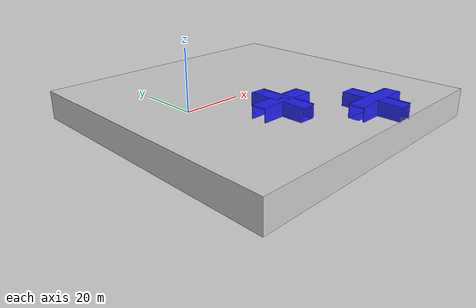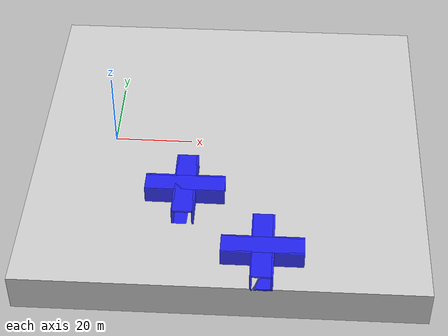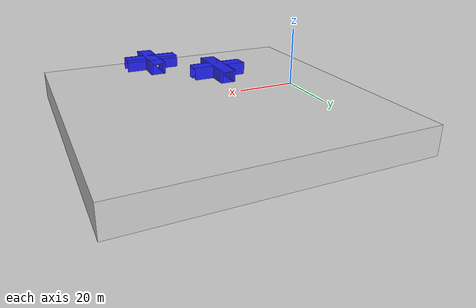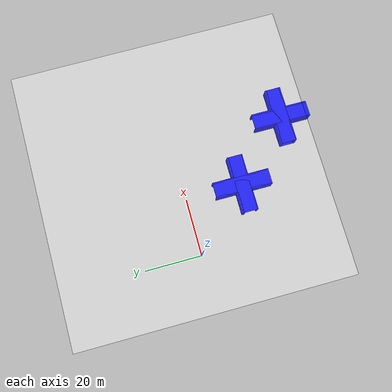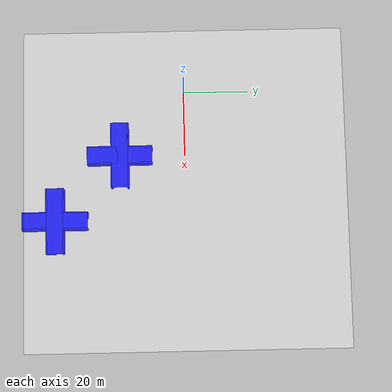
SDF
<sdf version="1.6">
 <world name="default">
  <model name="ground_plane">
   <static>true</static>
   <pose>30 0 0 0 0 0</pose>
   <link name="link">
    <collision name="collision">
     <pose>0 0 -5 0 0 0</pose>
     <geometry><box><size>100 100 10</size></box></geometry>
    </collision>
    <visual name="visual">
     <pose>0 0 -5 0 0 0</pose>
     <geometry><box><size>100 100 10</size></box></geometry>
     <material>
      <ambient>0.8 0.8 0.8 1</ambient>
      <diffuse>0.8 0.8 0.8 1</diffuse>
      <specular>0.8 0.8 0.8 1</specular>
      <emissive>0.8 0.8 0.8 1</emissive>
     </material>
    </visual>
   </link>
  </model>
  <model name="tunnel_tile_1_tile_1">
   <pose>20 -20 0 0 0 1.5707963267948966</pose>
   <static>true</static>
   <link name="link">
    <collision name="collision_0">
     <pose>0 0 -0.25 0 0 0</pose>
     <geometry><box><size>5 20 0.5</size></box></geometry>
    </collision>
    <visual name="visual_0">
     <pose>0 0 -0.25 0 0 0</pose>
     <geometry><box><size>5 20 0.5</size></box></geometry>
     <material><ambient>0 0 1 0.8</ambient><diffuse>0 0 1 0.8</diffuse><specular>1 1 1 0.8</specular></material>
    </visual>
    <collision name="collision_1">
     <pose>0 0 4.25 0 0 0</pose>
     <geometry><box><size>5 20 0.5</size></box></geometry>
    </collision>
    <visual name="visual_1">
     <pose>0 0 4.25 0 0 0</pose>
     <geometry><box><size>5 20 0.5</size></box></geometry>
     <material><ambient>0 0 1 0.8</ambient><diffuse>0 0 1 0.8</diffuse><specular>1 1 1 0.8</specular></material>
    </visual>
    <collision name="collision_2">
     <pose>0 0 -0.25 0 0 1.57</pose>
     <geometry><box><size>5 20 0.5</size></box></geometry>
    </collision>
    <visual name="visual_2">
     <pose>0 0 -0.25 0 0 1.57</pose>
     <geometry><box><size>5 20 0.5</size></box></geometry>
     <material><ambient>0 0 1 0.8</ambient><diffuse>0 0 1 0.8</diffuse><specular>1 1 1 0.8</specular></material>
    </visual>
    <collision name="collision_3">
     <pose>0 0 4.25 0 0 1.57</pose>
     <geometry><box><size>5 20 0.5</size></box></geometry>
    </collision>
    <visual name="visual_3">
     <pose>0 0 4.25 0 0 1.57</pose>
     <geometry><box><size>5 20 0.5</size></box></geometry>
     <material><ambient>0 0 1 0.8</ambient><diffuse>0 0 1 0.8</diffuse><specular>1 1 1 0.8</specular></material>
    </visual>
    <collision name="collision_4">
     <pose>-2.5 6.25 2 3.14 -1.57 0</pose>
     <geometry><box><size>5 7.5 0.5</size></box></geometry>
    </collision>
    <visual name="visual_4">
     <pose>-2.5 6.25 2 3.14 -1.57 0</pose>
     <geometry><box><size>5 7.5 0.5</size></box></geometry>
     <material><ambient>0 0 1 0.8</ambient><diffuse>0 0 1 0.8</diffuse><specular>1 1 1 0.8</specular></material>
    </visual>
    <collision name="collision_5">
     <pose>2.5 6.25 2 3.14 -1.57 0</pose>
     <geometry><box><size>5 7.5 0.5</size></box></geometry>
    </collision>
    <visual name="visual_5">
     <pose>2.5 6.25 2 3.14 -1.57 0</pose>
     <geometry><box><size>5 7.5 0.5</size></box></geometry>
     <material><ambient>0 0 1 0.8</ambient><diffuse>0 0 1 0.8</diffuse><specular>1 1 1 0.8</specular></material>
    </visual>
    <collision name="collision_6">
     <pose>-2.5 -6.25 2 3.14 -1.57 0</pose>
     <geometry><box><size>5 7.5 0.5</size></box></geometry>
    </collision>
    <visual name="visual_6">
     <pose>-2.5 -6.25 2 3.14 -1.57 0</pose>
     <geometry><box><size>5 7.5 0.5</size></box></geometry>
     <material><ambient>0 0 1 0.8</ambient><diffuse>0 0 1 0.8</diffuse><specular>1 1 1 0.8</specular></material>
    </visual>
    <collision name="collision_7">
     <pose>2.5 -6.25 2 3.14 -1.57 0</pose>
     <geometry><box><size>5 7.5 0.5</size></box></geometry>
    </collision>
    <visual name="visual_7">
     <pose>2.5 -6.25 2 3.14 -1.57 0</pose>
     <geometry><box><size>5 7.5 0.5</size></box></geometry>
     <material><ambient>0 0 1 0.8</ambient><diffuse>0 0 1 0.8</diffuse><specular>1 1 1 0.8</specular></material>
    </visual>
    <collision name="collision_8">
     <pose>6.25 2.5 2 1.57 1.57 0</pose>
     <geometry><box><size>5 7.5 0.5</size></box></geometry>
    </collision>
    <visual name="visual_8">
     <pose>6.25 2.5 2 1.57 1.57 0</pose>
     <geometry><box><size>5 7.5 0.5</size></box></geometry>
     <material><ambient>0 0 1 0.8</ambient><diffuse>0 0 1 0.8</diffuse><specular>1 1 1 0.8</specular></material>
    </visual>
    <collision name="collision_9">
     <pose>-6.25 2.5 2 1.57 1.57 0</pose>
     <geometry><box><size>5 7.5 0.5</size></box></geometry>
    </collision>
    <visual name="visual_9">
     <pose>-6.25 2.5 2 1.57 1.57 0</pose>
     <geometry><box><size>5 7.5 0.5</size></box></geometry>
     <material><ambient>0 0 1 0.8</ambient><diffuse>0 0 1 0.8</diffuse><specular>1 1 1 0.8</specular></material>
    </visual>
    <collision name="collision_10">
     <pose>6.25 -2.5 2 1.57 1.57 0</pose>
     <geometry><box><size>5 7.5 0.5</size></box></geometry>
    </collision>
    <visual name="visual_10">
     <pose>6.25 -2.5 2 1.57 1.57 0</pose>
     <geometry><box><size>5 7.5 0.5</size></box></geometry>
     <material><ambient>0 0 1 0.8</ambient><diffuse>0 0 1 0.8</diffuse><specular>1 1 1 0.8</specular></material>
    </visual>
    <collision name="collision_11">
     <pose>-6.25 -2.5 2 1.57 1.57 0</pose>
     <geometry><box><size>5 7.5 0.5</size></box></geometry>
    </collision>
    <visual name="visual_11">
     <pose>-6.25 -2.5 2 1.57 1.57 0</pose>
     <geometry><box><size>5 7.5 0.5</size></box></geometry>
     <material><ambient>0 0 1 0.8</ambient><diffuse>0 0 1 0.8</diffuse><specular>1 1 1 0.8</specular></material>
    </visual>
   </link>
  </model>
  <model name="tunnel_tile_1_tile_5">
   <pose>40 -40 0 0 0 0</pose>
   <static>true</static>
   <link name="link">
    <collision name="collision_0">
     <pose>0 0 -0.25 0 0 0</pose>
     <geometry><box><size>5 20 0.5</size></box></geometry>
    </collision>
    <visual name="visual_0">
     <pose>0 0 -0.25 0 0 0</pose>
     <geometry><box><size>5 20 0.5</size></box></geometry>
     <material><ambient>0 0 1 0.8</ambient><diffuse>0 0 1 0.8</diffuse><specular>1 1 1 0.8</specular></material>
    </visual>
    <collision name="collision_1">
     <pose>0 0 4.25 0 0 0</pose>
     <geometry><box><size>5 20 0.5</size></box></geometry>
    </collision>
    <visual name="visual_1">
     <pose>0 0 4.25 0 0 0</pose>
     <geometry><box><size>5 20 0.5</size></box></geometry>
     <material><ambient>0 0 1 0.8</ambient><diffuse>0 0 1 0.8</diffuse><specular>1 1 1 0.8</specular></material>
    </visual>
    <collision name="collision_2">
     <pose>0 0 -0.25 0 0 1.57</pose>
     <geometry><box><size>5 20 0.5</size></box></geometry>
    </collision>
    <visual name="visual_2">
     <pose>0 0 -0.25 0 0 1.57</pose>
     <geometry><box><size>5 20 0.5</size></box></geometry>
     <material><ambient>0 0 1 0.8</ambient><diffuse>0 0 1 0.8</diffuse><specular>1 1 1 0.8</specular></material>
    </visual>
    <collision name="collision_3">
     <pose>0 0 4.25 0 0 1.57</pose>
     <geometry><box><size>5 20 0.5</size></box></geometry>
    </collision>
    <visual name="visual_3">
     <pose>0 0 4.25 0 0 1.57</pose>
     <geometry><box><size>5 20 0.5</size></box></geometry>
     <material><ambient>0 0 1 0.8</ambient><diffuse>0 0 1 0.8</diffuse><specular>1 1 1 0.8</specular></material>
    </visual>
    <collision name="collision_4">
     <pose>-2.5 6.25 2 3.14 -1.57 0</pose>
     <geometry><box><size>5 7.5 0.5</size></box></geometry>
    </collision>
    <visual name="visual_4">
     <pose>-2.5 6.25 2 3.14 -1.57 0</pose>
     <geometry><box><size>5 7.5 0.5</size></box></geometry>
     <material><ambient>0 0 1 0.8</ambient><diffuse>0 0 1 0.8</diffuse><specular>1 1 1 0.8</specular></material>
    </visual>
    <collision name="collision_5">
     <pose>2.5 6.25 2 3.14 -1.57 0</pose>
     <geometry><box><size>5 7.5 0.5</size></box></geometry>
    </collision>
    <visual name="visual_5">
     <pose>2.5 6.25 2 3.14 -1.57 0</pose>
     <geometry><box><size>5 7.5 0.5</size></box></geometry>
     <material><ambient>0 0 1 0.8</ambient><diffuse>0 0 1 0.8</diffuse><specular>1 1 1 0.8</specular></material>
    </visual>
    <collision name="collision_6">
     <pose>-2.5 -6.25 2 3.14 -1.57 0</pose>
     <geometry><box><size>5 7.5 0.5</size></box></geometry>
    </collision>
    <visual name="visual_6">
     <pose>-2.5 -6.25 2 3.14 -1.57 0</pose>
     <geometry><box><size>5 7.5 0.5</size></box></geometry>
     <material><ambient>0 0 1 0.8</ambient><diffuse>0 0 1 0.8</diffuse><specular>1 1 1 0.8</specular></material>
    </visual>
    <collision name="collision_7">
     <pose>2.5 -6.25 2 3.14 -1.57 0</pose>
     <geometry><box><size>5 7.5 0.5</size></box></geometry>
    </collision>
    <visual name="visual_7">
     <pose>2.5 -6.25 2 3.14 -1.57 0</pose>
     <geometry><box><size>5 7.5 0.5</size></box></geometry>
     <material><ambient>0 0 1 0.8</ambient><diffuse>0 0 1 0.8</diffuse><specular>1 1 1 0.8</specular></material>
    </visual>
    <collision name="collision_8">
     <pose>6.25 2.5 2 1.57 1.57 0</pose>
     <geometry><box><size>5 7.5 0.5</size></box></geometry>
    </collision>
    <visual name="visual_8">
     <pose>6.25 2.5 2 1.57 1.57 0</pose>
     <geometry><box><size>5 7.5 0.5</size></box></geometry>
     <material><ambient>0 0 1 0.8</ambient><diffuse>0 0 1 0.8</diffuse><specular>1 1 1 0.8</specular></material>
    </visual>
    <collision name="collision_9">
     <pose>-6.25 2.5 2 1.57 1.57 0</pose>
     <geometry><box><size>5 7.5 0.5</size></box></geometry>
    </collision>
    <visual name="visual_9">
     <pose>-6.25 2.5 2 1.57 1.57 0</pose>
     <geometry><box><size>5 7.5 0.5</size></box></geometry>
     <material><ambient>0 0 1 0.8</ambient><diffuse>0 0 1 0.8</diffuse><specular>1 1 1 0.8</specular></material>
    </visual>
    <collision name="collision_10">
     <pose>6.25 -2.5 2 1.57 1.57 0</pose>
     <geometry><box><size>5 7.5 0.5</size></box></geometry>
    </collision>
    <visual name="visual_10">
     <pose>6.25 -2.5 2 1.57 1.57 0</pose>
     <geometry><box><size>5 7.5 0.5</size></box></geometry>
     <material><ambient>0 0 1 0.8</ambient><diffuse>0 0 1 0.8</diffuse><specular>1 1 1 0.8</specular></material>
    </visual>
    <collision name="collision_11">
     <pose>-6.25 -2.5 2 1.57 1.57 0</pose>
     <geometry><box><size>5 7.5 0.5</size></box></geometry>
    </collision>
    <visual name="visual_11">
     <pose>-6.25 -2.5 2 1.57 1.57 0</pose>
     <geometry><box><size>5 7.5 0.5</size></box></geometry>
     <material><ambient>0 0 1 0.8</ambient><diffuse>0 0 1 0.8</diffuse><specular>1 1 1 0.8</specular></material>
    </visual>
   </link>
  </model>
 </world>
</sdf>
